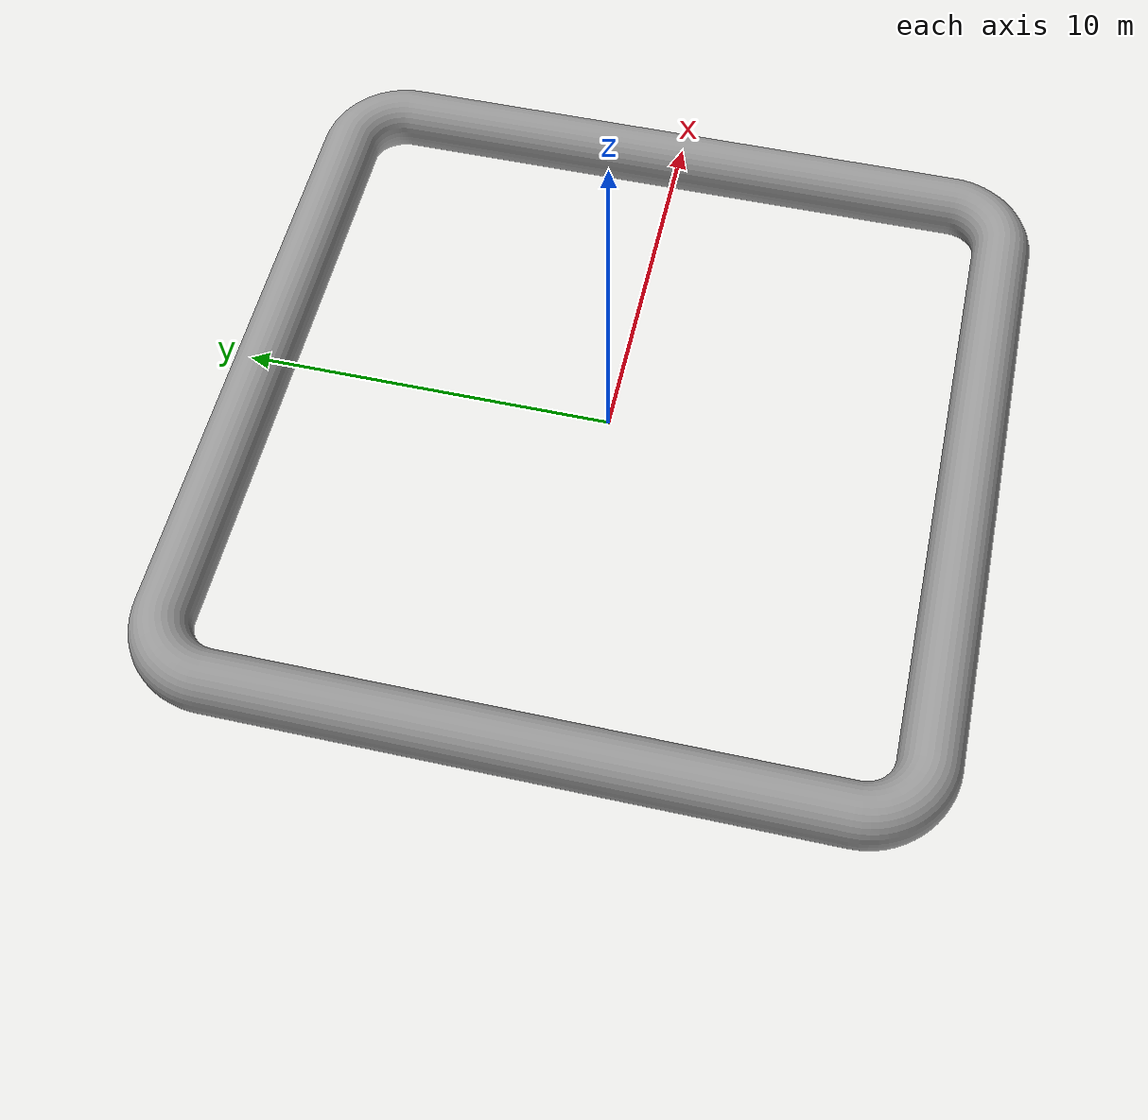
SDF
<?xml version="1.0" ?>
<sdf version="1.8">
  <world name="pipe_world">
    <!-- 物理引擎设置 -->
    <physics name="1ms" type="ignored">
      <max_step_size>0.001</max_step_size> <!-- 仿真步长 1ms -->
      <real_time_factor>1.0</real_time_factor> <!-- 实时因子，1.0表示并通过真实时间流逝 -->
    </physics>

    <!-- 必要的插件 -->
    <plugin
      filename="ignition-gazebo-physics-system"
      name="ignition::gazebo::systems::Physics">
    </plugin>
    <plugin
      filename="ignition-gazebo-user-commands-system"
      name="ignition::gazebo::systems::UserCommands">
    </plugin>
    <plugin
      filename="ignition-gazebo-scene-broadcaster-system"
      name="ignition::gazebo::systems::SceneBroadcaster">
    </plugin>

    <!-- 光照设置 (太阳光) -->
    <light type="directional" name="sun">
      <cast_shadows>true</cast_shadows>
      <pose>0 0 10 0 0 0</pose>
      <diffuse>0.8 0.8 0.8 1</diffuse>
      <specular>0.2 0.2 0.2 1</specular>
      <attenuation>
        <range>1000</range>
        <constant>0.9</constant>
        <linear>0.01</linear>
        <quadratic>0.001</quadratic>
      </attenuation>
      <direction>-0.5 0.1 -0.9</direction>
    </light>

    <!-- 管道模型 -->
    <model name="pipe_track">
      <static>true</static> <!-- 静态模型，不受重力影响，不动 -->
      <pose>0 0 0 0 0 0</pose>
      <link name="link">
        <!-- 碰撞几何体 (Collision) - 用于物理计算 -->
        <collision name="collision">
          <geometry>
            <mesh>
              <uri>file:///home/yinyudream/robot/src/simple_car_sim/worlds/pipe.obj</uri> <!-- 引用生成的 OBJ 文件 -->
              <scale>1 1 1</scale>
            </mesh>
          </geometry>
          <surface>
            <friction>
              <ode>
                <mu>1.0</mu> <!-- 摩擦系数 -->
                <mu2>1.0</mu2>
              </ode>
            </friction>
          </surface>
        </collision>
        <!-- 可视化几何体 (Visual) - 用于渲染 -->
        <visual name="visual">
          <geometry>
            <mesh>
              <uri>file:///home/yinyudream/robot/src/simple_car_sim/worlds/pipe.obj</uri>
              <scale>1 1 1</scale>
            </mesh>
          </geometry>
          <material>
            <ambient>0.6 0.6 0.6 1</ambient>
            <diffuse>0.6 0.6 0.6 1</diffuse>
            <specular>0.5 0.5 0.5 1</specular>
          </material>
        </visual>
      </link>
    </model>
  </world>
</sdf>
